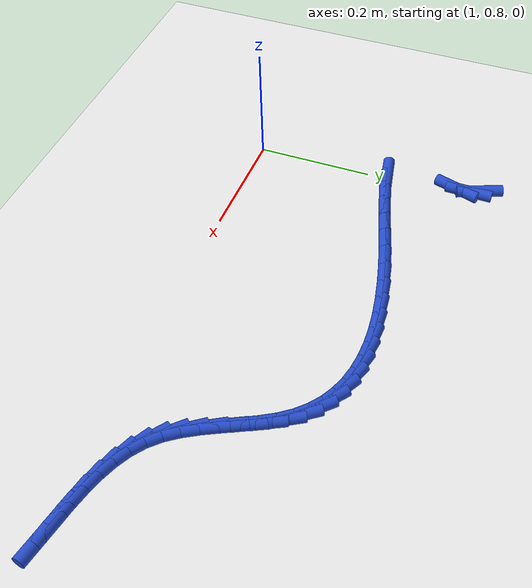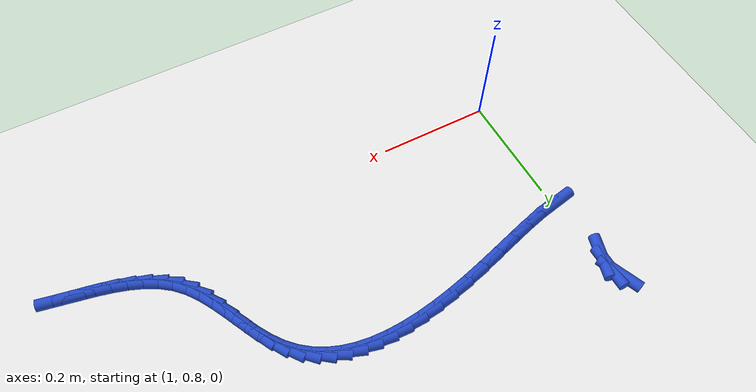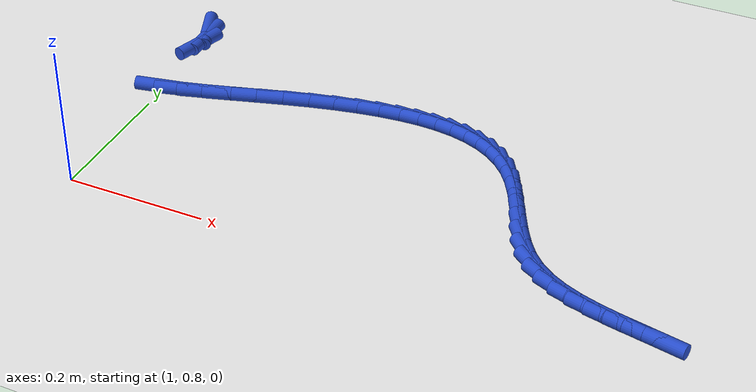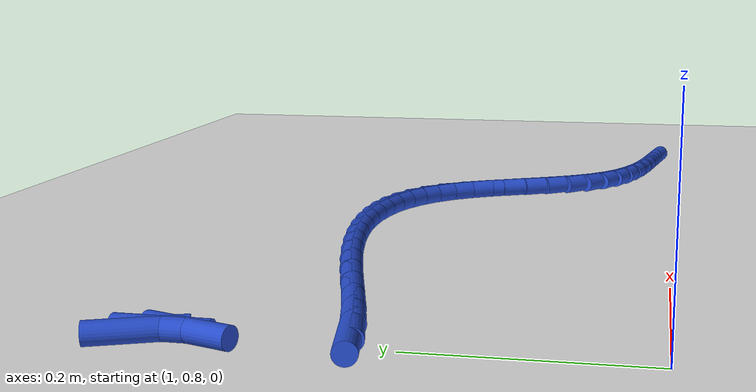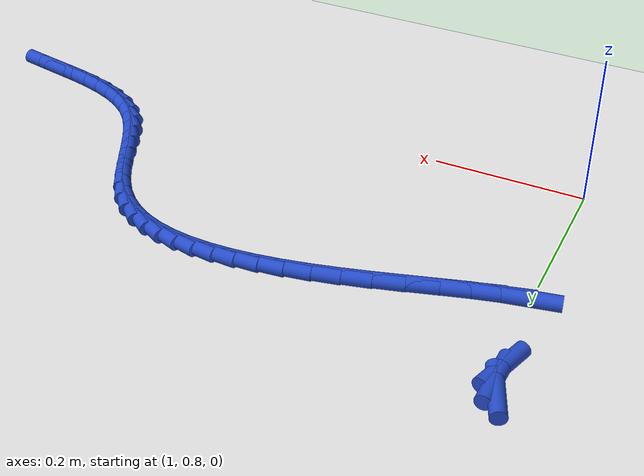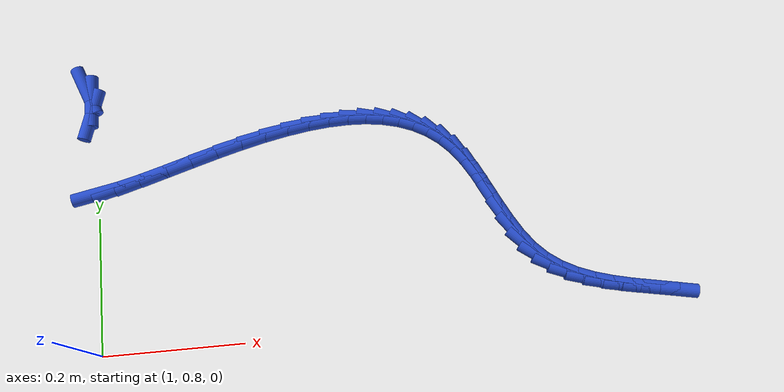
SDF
<sdf version="1.6">
 <world name="default">
  <model name="ground_plane">
   <static>1</static>
   <link name="link">
    <collision name="collision">
     <geometry><plane><normal>0 0 1</normal><size>100 100</size></plane></geometry>
     <surface><friction><ode><mu>100</mu><mu2>50</mu2></ode></friction></surface>
    </collision>
    <visual name="visual">
     <cast_shadows>0</cast_shadows>
     <geometry><plane><normal>0 0 1</normal><size>100 100</size></plane></geometry>
     <material>
      <script><uri>file://media/materials/scripts/gazebo.material</uri><name>Gazebo/WhiteGlow</name></script>
     </material>
    </visual>
   </link>
  </model>
  <model name="line">
   <link name="link_64">
    <pose>0.9860546242229519 1.1968704690138634 0.01 0 1.57 -1.1966138454430713</pose>
    <collision name="collision">
     <geometry><cylinder><radius>0.01</radius><length>0.08</length></cylinder></geometry>
    </collision>
    <visual name="visual">
     <material>
      <script><name>Gazebo/Blue</name><uri>file://media/materials/scripts/gazebo.material</uri></script>
     </material>
     <geometry><cylinder><radius>0.01</radius><length>0.08</length></cylinder></geometry>
    </visual>
   </link>
   <link name="link_65">
    <pose>0.9928169964911593 1.1796495107440361 0.01 0 1.57 1.5586537033834686</pose>
    <collision name="collision">
     <geometry><cylinder><radius>0.01</radius><length>0.08</length></cylinder></geometry>
    </collision>
    <visual name="visual">
     <material>
      <script><name>Gazebo/Blue</name><uri>file://media/materials/scripts/gazebo.material</uri></script>
     </material>
     <geometry><cylinder><radius>0.01</radius><length>0.08</length></cylinder></geometry>
    </visual>
   </link>
   <link name="link_66">
    <pose>0.9925626072952989 1.1587004386648527 0.01 0 1.57 1.2690001442227676</pose>
    <collision name="collision">
     <geometry><cylinder><radius>0.01</radius><length>0.08</length></cylinder></geometry>
    </collision>
    <visual name="visual">
     <material>
      <script><name>Gazebo/Blue</name><uri>file://media/materials/scripts/gazebo.material</uri></script>
     </material>
     <geometry><cylinder><radius>0.01</radius><length>0.08</length></cylinder></geometry>
    </visual>
   </link>
   <link name="link_74">
    <pose>1.002587944121631 1.0359165631027492 0.01 0 1.57 0.19376846875348608</pose>
    <collision name="collision">
     <geometry><cylinder><radius>0.01</radius><length>0.08</length></cylinder></geometry>
    </collision>
    <visual name="visual">
     <material>
      <script><name>Gazebo/Blue</name><uri>file://media/materials/scripts/gazebo.material</uri></script>
     </material>
     <geometry><cylinder><radius>0.01</radius><length>0.08</length></cylinder></geometry>
    </visual>
   </link>
   <link name="link_75">
    <pose>1.0314466550729204 1.0415795236276857 0.01 0 1.57 0.25199291635664633</pose>
    <collision name="collision">
     <geometry><cylinder><radius>0.01</radius><length>0.08</length></cylinder></geometry>
    </collision>
    <visual name="visual">
     <material>
      <script><name>Gazebo/Blue</name><uri>file://media/materials/scripts/gazebo.material</uri></script>
     </material>
     <geometry><cylinder><radius>0.01</radius><length>0.08</length></cylinder></geometry>
    </visual>
   </link>
   <link name="link_76">
    <pose>1.0643515141556517 1.0500514014153648 0.01 0 1.57 0.2813620786361187</pose>
    <collision name="collision">
     <geometry><cylinder><radius>0.01</radius><length>0.08</length></cylinder></geometry>
    </collision>
    <visual name="visual">
     <material>
      <script><name>Gazebo/Blue</name><uri>file://media/materials/scripts/gazebo.material</uri></script>
     </material>
     <geometry><cylinder><radius>0.01</radius><length>0.08</length></cylinder></geometry>
    </visual>
   </link>
   <link name="link_77">
    <pose>1.1000812941815075 1.0603783658009567 0.01 0 1.57 0.2921491000549135</pose>
    <collision name="collision">
     <geometry><cylinder><radius>0.01</radius><length>0.08</length></cylinder></geometry>
    </collision>
    <visual name="visual">
     <material>
      <script><name>Gazebo/Blue</name><uri>file://media/materials/scripts/gazebo.material</uri></script>
     </material>
     <geometry><cylinder><radius>0.01</radius><length>0.08</length></cylinder></geometry>
    </visual>
   </link>
   <link name="link_78">
    <pose>1.1374147679621693 1.07160658611963 0.01 0 1.57 0.2880689051992741</pose>
    <collision name="collision">
     <geometry><cylinder><radius>0.01</radius><length>0.08</length></cylinder></geometry>
    </collision>
    <visual name="visual">
     <material>
      <script><name>Gazebo/Blue</name><uri>file://media/materials/scripts/gazebo.material</uri></script>
     </material>
     <geometry><cylinder><radius>0.01</radius><length>0.08</length></cylinder></geometry>
    </visual>
   </link>
   <link name="link_79">
    <pose>1.1751307083093185 1.0827822317065539 0.01 0 1.57 0.26925253856919273</pose>
    <collision name="collision">
     <geometry><cylinder><radius>0.01</radius><length>0.08</length></cylinder></geometry>
    </collision>
    <visual name="visual">
     <material>
      <script><name>Gazebo/Blue</name><uri>file://media/materials/scripts/gazebo.material</uri></script>
     </material>
     <geometry><cylinder><radius>0.01</radius><length>0.08</length></cylinder></geometry>
    </visual>
   </link>
   <link name="link_80">
    <pose>1.2120247513012237 1.0929632752781082 0.01 0 1.57 0.23867908906135366</pose>
    <collision name="collision">
     <geometry><cylinder><radius>0.01</radius><length>0.08</length></cylinder></geometry>
    </collision>
    <visual name="visual">
     <material>
      <script><name>Gazebo/Blue</name><uri>file://media/materials/scripts/gazebo.material</uri></script>
     </material>
     <geometry><cylinder><radius>0.01</radius><length>0.08</length></cylinder></geometry>
    </visual>
   </link>
   <link name="link_81">
    <pose>1.2474170606443942 1.10157483072823 0.01 0 1.57 0.2011450879656559</pose>
    <collision name="collision">
     <geometry><cylinder><radius>0.01</radius><length>0.08</length></cylinder></geometry>
    </collision>
    <visual name="visual">
     <material>
      <script><name>Gazebo/Blue</name><uri>file://media/materials/scripts/gazebo.material</uri></script>
     </material>
     <geometry><cylinder><radius>0.01</radius><length>0.08</length></cylinder></geometry>
    </visual>
   </link>
   <link name="link_82">
    <pose>1.2812417982576054 1.108471777733496 0.01 0 1.57 0.15579319072140588</pose>
    <collision name="collision">
     <geometry><cylinder><radius>0.01</radius><length>0.08</length></cylinder></geometry>
    </collision>
    <visual name="visual">
     <material>
      <script><name>Gazebo/Blue</name><uri>file://media/materials/scripts/gazebo.material</uri></script>
     </material>
     <geometry><cylinder><radius>0.01</radius><length>0.08</length></cylinder></geometry>
    </visual>
   </link>
   <link name="link_83">
    <pose>1.3134680226957354 1.113533421742134 0.01 0 1.57 0.10115598374585874</pose>
    <collision name="collision">
     <geometry><cylinder><radius>0.01</radius><length>0.08</length></cylinder></geometry>
    </collision>
    <visual name="visual">
     <material>
      <script><name>Gazebo/Blue</name><uri>file://media/materials/scripts/gazebo.material</uri></script>
     </material>
     <geometry><cylinder><radius>0.01</radius><length>0.08</length></cylinder></geometry>
    </visual>
   </link>
   <link name="link_84">
    <pose>1.3440647925136622 1.1166390682023715 0.01 0 1.57 0.03554422569072332</pose>
    <collision name="collision">
     <geometry><cylinder><radius>0.01</radius><length>0.08</length></cylinder></geometry>
    </collision>
    <visual name="visual">
     <material>
      <script><name>Gazebo/Blue</name><uri>file://media/materials/scripts/gazebo.material</uri></script>
     </material>
     <geometry><cylinder><radius>0.01</radius><length>0.08</length></cylinder></geometry>
    </visual>
   </link>
   <link name="link_85">
    <pose>1.373001166266262 1.1176680225624354 0.01 0 1.57 -0.04285979796544012</pose>
    <collision name="collision">
     <geometry><cylinder><radius>0.01</radius><length>0.08</length></cylinder></geometry>
    </collision>
    <visual name="visual">
     <material>
      <script><name>Gazebo/Blue</name><uri>file://media/materials/scripts/gazebo.material</uri></script>
     </material>
     <geometry><cylinder><radius>0.01</radius><length>0.08</length></cylinder></geometry>
    </visual>
   </link>
   <link name="link_86">
    <pose>1.400246202508415 1.116499590270553 0.01 0 1.57 -0.1357637881752329</pose>
    <collision name="collision">
     <geometry><cylinder><radius>0.01</radius><length>0.08</length></cylinder></geometry>
    </collision>
    <visual name="visual">
     <material>
      <script><name>Gazebo/Blue</name><uri>file://media/materials/scripts/gazebo.material</uri></script>
     </material>
     <geometry><cylinder><radius>0.01</radius><length>0.08</length></cylinder></geometry>
    </visual>
   </link>
   <link name="link_87">
    <pose>1.4257689597949978 1.1130130767749522 0.01 0 1.57 -0.24430165773730167</pose>
    <collision name="collision">
     <geometry><cylinder><radius>0.01</radius><length>0.08</length></cylinder></geometry>
    </collision>
    <visual name="visual">
     <material>
      <script><name>Gazebo/Blue</name><uri>file://media/materials/scripts/gazebo.material</uri></script>
     </material>
     <geometry><cylinder><radius>0.01</radius><length>0.08</length></cylinder></geometry>
    </visual>
   </link>
   <link name="link_88">
    <pose>1.4495384966808886 1.1070877875238598 0.01 0 1.57 -0.36831630921177866</pose>
    <collision name="collision">
     <geometry><cylinder><radius>0.01</radius><length>0.08</length></cylinder></geometry>
    </collision>
    <visual name="visual">
     <material>
      <script><name>Gazebo/Blue</name><uri>file://media/materials/scripts/gazebo.material</uri></script>
     </material>
     <geometry><cylinder><radius>0.01</radius><length>0.08</length></cylinder></geometry>
    </visual>
   </link>
   <link name="link_89">
    <pose>1.471523871720965 1.0986030279655032 0.01 0 1.57 -0.5055521476734737</pose>
    <collision name="collision">
     <geometry><cylinder><radius>0.01</radius><length>0.08</length></cylinder></geometry>
    </collision>
    <visual name="visual">
     <material>
      <script><name>Gazebo/Blue</name><uri>file://media/materials/scripts/gazebo.material</uri></script>
     </material>
     <geometry><cylinder><radius>0.01</radius><length>0.08</length></cylinder></geometry>
    </visual>
   </link>
   <link name="link_90">
    <pose>1.4916941434701054 1.0874381035481102 0.01 0 1.57 -0.651230977815713</pose>
    <collision name="collision">
     <geometry><cylinder><radius>0.01</radius><length>0.08</length></cylinder></geometry>
    </collision>
    <visual name="visual">
     <material>
      <script><name>Gazebo/Blue</name><uri>file://media/materials/scripts/gazebo.material</uri></script>
     </material>
     <geometry><cylinder><radius>0.01</radius><length>0.08</length></cylinder></geometry>
    </visual>
   </link>
   <link name="link_91">
    <pose>1.5100183704831867 1.0734723197199074 0.01 0 1.57 -0.7985998119423762</pose>
    <collision name="collision">
     <geometry><cylinder><radius>0.01</radius><length>0.08</length></cylinder></geometry>
    </collision>
    <visual name="visual">
     <material>
      <script><name>Gazebo/Blue</name><uri>file://media/materials/scripts/gazebo.material</uri></script>
     </material>
     <geometry><cylinder><radius>0.01</radius><length>0.08</length></cylinder></geometry>
    </visual>
   </link>
   <link name="link_92">
    <pose>1.5264656113150874 1.0565849819291233 0.01 0 1.57 -0.939232094600086</pose>
    <collision name="collision">
     <geometry><cylinder><radius>0.01</radius><length>0.08</length></cylinder></geometry>
    </collision>
    <visual name="visual">
     <material>
      <script><name>Gazebo/Blue</name><uri>file://media/materials/scripts/gazebo.material</uri></script>
     </material>
     <geometry><cylinder><radius>0.01</radius><length>0.08</length></cylinder></geometry>
    </visual>
   </link>
   <link name="link_93">
    <pose>1.541023194390251 1.0366843404555288 0.01 0 1.57 -1.0460801497887524</pose>
    <collision name="collision">
     <geometry><cylinder><radius>0.01</radius><length>0.08</length></cylinder></geometry>
    </collision>
    <visual name="visual">
     <material>
      <script><name>Gazebo/Blue</name><uri>file://media/materials/scripts/gazebo.material</uri></script>
     </material>
     <geometry><cylinder><radius>0.01</radius><length>0.08</length></cylinder></geometry>
    </visual>
   </link>
   <link name="link_94">
    <pose>1.5540234503953603 1.0142252303438934 0.01 0 1.57 -1.1056395041748535</pose>
    <collision name="collision">
     <geometry><cylinder><radius>0.01</radius><length>0.08</length></cylinder></geometry>
    </collision>
    <visual name="visual">
     <material>
      <script><name>Gazebo/Blue</name><uri>file://media/materials/scripts/gazebo.material</uri></script>
     </material>
     <geometry><cylinder><radius>0.01</radius><length>0.08</length></cylinder></geometry>
    </visual>
   </link>
   <link name="link_95">
    <pose>1.5661064776580764 0.990150080843808 0.01 0 1.57 -1.1250691606056618</pose>
    <collision name="collision">
     <geometry><cylinder><radius>0.01</radius><length>0.08</length></cylinder></geometry>
    </collision>
    <visual name="visual">
     <material>
      <script><name>Gazebo/Blue</name><uri>file://media/materials/scripts/gazebo.material</uri></script>
     </material>
     <geometry><cylinder><radius>0.01</radius><length>0.08</length></cylinder></geometry>
    </visual>
   </link>
   <link name="link_96">
    <pose>1.577923166989865 0.9654184196644063 0.01 0 1.57 -1.1075771709890136</pose>
    <collision name="collision">
     <geometry><cylinder><radius>0.01</radius><length>0.08</length></cylinder></geometry>
    </collision>
    <visual name="visual">
     <material>
      <script><name>Gazebo/Blue</name><uri>file://media/materials/scripts/gazebo.material</uri></script>
     </material>
     <geometry><cylinder><radius>0.01</radius><length>0.08</length></cylinder></geometry>
    </visual>
   </link>
   <link name="link_97">
    <pose>1.5901244092021902 0.9409897745148232 0.01 0 1.57 -1.0516855634457887</pose>
    <collision name="collision">
     <geometry><cylinder><radius>0.01</radius><length>0.08</length></cylinder></geometry>
    </collision>
    <visual name="visual">
     <material>
      <script><name>Gazebo/Blue</name><uri>file://media/materials/scripts/gazebo.material</uri></script>
     </material>
     <geometry><cylinder><radius>0.01</radius><length>0.08</length></cylinder></geometry>
    </visual>
   </link>
   <link name="link_98">
    <pose>1.6033610951065178 0.9178236731041933 0.01 0 1.57 -0.9517176344220338</pose>
    <collision name="collision">
     <geometry><cylinder><radius>0.01</radius><length>0.08</length></cylinder></geometry>
    </collision>
    <visual name="visual">
     <material>
      <script><name>Gazebo/Blue</name><uri>file://media/materials/scripts/gazebo.material</uri></script>
     </material>
     <geometry><cylinder><radius>0.01</radius><length>0.08</length></cylinder></geometry>
    </visual>
   </link>
   <link name="link_99">
    <pose>1.6182841155143128 0.8968796431416508 0.01 0 1.57 -0.8017544807335152</pose>
    <collision name="collision">
     <geometry><cylinder><radius>0.01</radius><length>0.08</length></cylinder></geometry>
    </collision>
    <visual name="visual">
     <material>
      <script><name>Gazebo/Blue</name><uri>file://media/materials/scripts/gazebo.material</uri></script>
     </material>
     <geometry><cylinder><radius>0.01</radius><length>0.08</length></cylinder></geometry>
    </visual>
   </link>
   <link name="link_100">
    <pose>1.6355159116438671 0.8790747242732585 0.01 0 1.57 -0.6356002564603009</pose>
    <collision name="collision">
     <geometry><cylinder><radius>0.01</radius><length>0.08</length></cylinder></geometry>
    </collision>
    <visual name="visual">
     <material>
      <script><name>Gazebo/Blue</name><uri>file://media/materials/scripts/gazebo.material</uri></script>
     </material>
     <geometry><cylinder><radius>0.01</radius><length>0.08</length></cylinder></geometry>
    </visual>
   </link>
   <link name="link_101">
    <pose>1.6551742411855659 0.8645722362083997 0.01 0 1.57 -0.4925867406405621</pose>
    <collision name="collision">
     <geometry><cylinder><radius>0.01</radius><length>0.08</length></cylinder></geometry>
    </collision>
    <visual name="visual">
     <material>
      <script><name>Gazebo/Blue</name><uri>file://media/materials/scripts/gazebo.material</uri></script>
     </material>
     <geometry><cylinder><radius>0.01</radius><length>0.08</length></cylinder></geometry>
    </visual>
   </link>
   <link name="link_102">
    <pose>1.6769435222394942 0.8528883273689005 0.01 0 1.57 -0.37867386024666994</pose>
    <collision name="collision">
     <geometry><cylinder><radius>0.01</radius><length>0.08</length></cylinder></geometry>
    </collision>
    <visual name="visual">
     <material>
      <script><name>Gazebo/Blue</name><uri>file://media/materials/scripts/gazebo.material</uri></script>
     </material>
     <geometry><cylinder><radius>0.01</radius><length>0.08</length></cylinder></geometry>
    </visual>
   </link>
   <link name="link_103">
    <pose>1.7004940960816686 0.843518123134708 0.01 0 1.57 -0.2936830649587683</pose>
    <collision name="collision">
     <geometry><cylinder><radius>0.01</radius><length>0.08</length></cylinder></geometry>
    </collision>
    <visual name="visual">
     <material>
      <script><name>Gazebo/Blue</name><uri>file://media/materials/scripts/gazebo.material</uri></script>
     </material>
     <geometry><cylinder><radius>0.01</radius><length>0.08</length></cylinder></geometry>
    </visual>
   </link>
   <link name="link_104">
    <pose>1.7254963039881084 0.8359567488857692 0.01 0 1.57 -0.23509666714366115</pose>
    <collision name="collision">
     <geometry><cylinder><radius>0.01</radius><length>0.08</length></cylinder></geometry>
    </collision>
    <visual name="visual">
     <material>
      <script><name>Gazebo/Blue</name><uri>file://media/materials/scripts/gazebo.material</uri></script>
     </material>
     <geometry><cylinder><radius>0.01</radius><length>0.08</length></cylinder></geometry>
    </visual>
   </link>
   <link name="link_105">
    <pose>1.7516204872348309 0.8296993300020309 0.01 0 1.57 -0.20007470644073472</pose>
    <collision name="collision">
     <geometry><cylinder><radius>0.01</radius><length>0.08</length></cylinder></geometry>
    </collision>
    <visual name="visual">
     <material>
      <script><name>Gazebo/Blue</name><uri>file://media/materials/scripts/gazebo.material</uri></script>
     </material>
     <geometry><cylinder><radius>0.01</radius><length>0.08</length></cylinder></geometry>
    </visual>
   </link>
   <link name="link_106">
    <pose>1.778536987097855 0.8242409918634401 0.01 0 1.57 -0.18642529350978923</pose>
    <collision name="collision">
     <geometry><cylinder><radius>0.01</radius><length>0.08</length></cylinder></geometry>
    </collision>
    <visual name="visual">
     <material>
      <script><name>Gazebo/Blue</name><uri>file://media/materials/scripts/gazebo.material</uri></script>
     </material>
     <geometry><cylinder><radius>0.01</radius><length>0.08</length></cylinder></geometry>
    </visual>
   </link>
   <link name="link_107">
    <pose>1.8059161448531984 0.819076859849944 0.01 0 1.57 -0.19293096035353363</pose>
    <collision name="collision">
     <geometry><cylinder><radius>0.01</radius><length>0.08</length></cylinder></geometry>
    </collision>
    <visual name="visual">
     <material>
      <script><name>Gazebo/Blue</name><uri>file://media/materials/scripts/gazebo.material</uri></script>
     </material>
     <geometry><cylinder><radius>0.01</radius><length>0.08</length></cylinder></geometry>
    </visual>
   </link>
  </model>
 </world>
</sdf>
